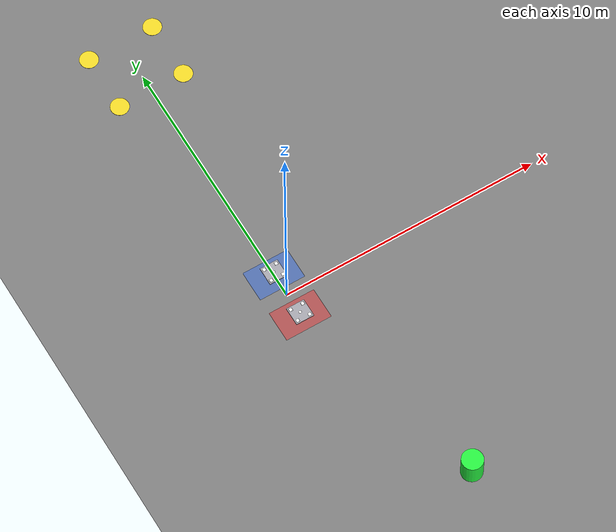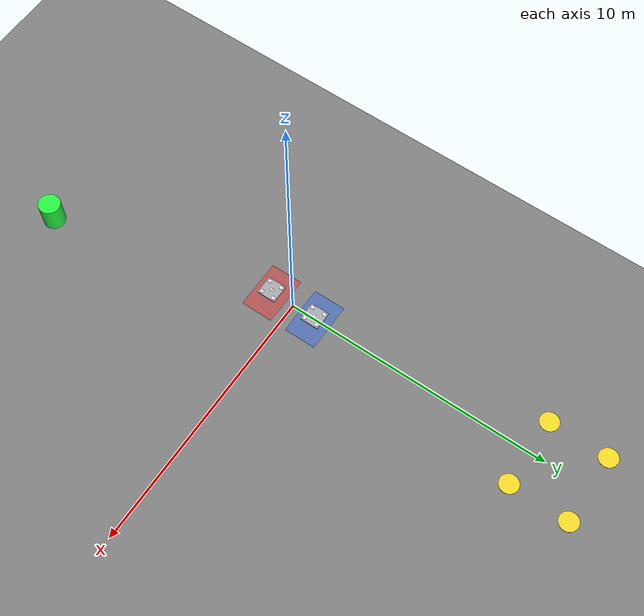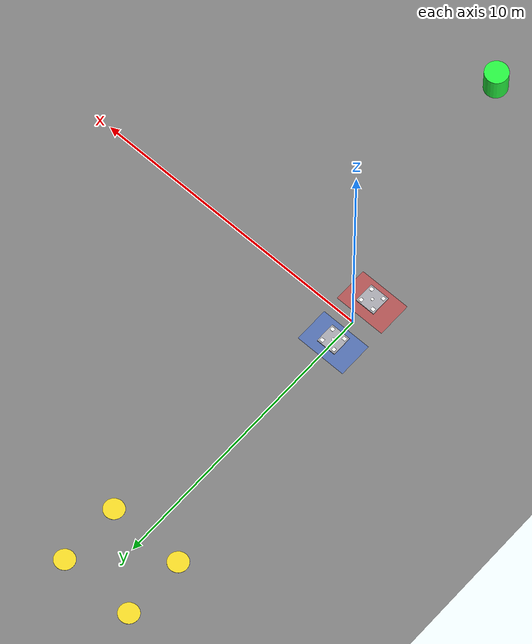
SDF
<sdf version="1.9">
 <world name="rmuc_2027_field">
  <physics type="ode">
   <max_step_size>0.004</max_step_size>
   <real_time_factor>1.0</real_time_factor>
   <real_time_update_rate>250</real_time_update_rate>
  </physics>
  <plugin name="gz::sim::systems::Physics" filename="gz-sim-physics-system"/>
  <plugin name="gz::sim::systems::UserCommands" filename="gz-sim-user-commands-system"/>
  <plugin name="gz::sim::systems::SceneBroadcaster" filename="gz-sim-scene-broadcaster-system"/>
  <plugin name="gz::sim::systems::Contact" filename="gz-sim-contact-system"/>
  <plugin name="gz::sim::systems::Imu" filename="gz-sim-imu-system"/>
  <plugin name="gz::sim::systems::AirPressure" filename="gz-sim-air-pressure-system"/>
  <plugin name="gz::sim::systems::ApplyLinkWrench" filename="gz-sim-apply-link-wrench-system"/>
  <plugin name="gz::sim::systems::NavSat" filename="gz-sim-navsat-system"/>
  <plugin name="gz::sim::systems::Sensors" filename="gz-sim-sensors-system">
   <render_engine>ogre2</render_engine>
  </plugin>
  <gravity>0 0 -9.8</gravity>
  <magnetic_field>6e-06 2.3e-05 -4.2e-05</magnetic_field>
  <atmosphere type="adiabatic"/>
  <scene>
   <grid>false</grid>
   <ambient>0.4 0.4 0.4 1</ambient>
   <background>0.7 0.7 0.7 1</background>
   <shadows>true</shadows>
  </scene>
  <light name="sunUTC" type="directional">
   <pose>0 0 500 0 -0 0</pose>
   <intensity>1</intensity>
   <direction>0.001 0.625 -0.78</direction>
   <diffuse>0.904 0.904 0.904 1</diffuse>
   <specular>0.271 0.271 0.271 1</specular>
   <attenuation><range>2000</range><linear>0</linear><constant>1</constant><quadratic>0</quadratic></attenuation>
   <spot><inner_angle>0</inner_angle><outer_angle>0</outer_angle><falloff>0</falloff></spot>
  </light>
  <spherical_coordinates>
   <surface_model>EARTH_WGS84</surface_model>
   <world_frame_orientation>ENU</world_frame_orientation>
   <latitude_deg>47.397971057728974</latitude_deg>
   <longitude_deg>8.546163739800146</longitude_deg>
   <elevation>0</elevation>
  </spherical_coordinates>
  <model name="ground_plane">
   <static>true</static>
   <link name="link">
    <collision name="collision">
     <geometry><plane><normal>0 0 1</normal><size>1 1</size></plane></geometry>
    </collision>
    <visual name="visual">
     <geometry><plane><normal>0 0 1</normal><size>100 100</size></plane></geometry>
     <material>
      <ambient>0.5 0.5 0.5 1</ambient>
      <diffuse>0.5 0.5 0.5 1</diffuse>
      <specular>0.5 0.5 0.5 1</specular>
     </material>
    </visual>
   </link>
  </model>
  <model name="hangar_blue">
   <include><uri>model://hangar</uri><name>hangar_blue</name><pose>0 0.9 0 0 0 0</pose></include>
   <static>true</static>
  </model>
  <model name="hangar_red">
   <include><uri>model://hangar</uri><name>hangar_red</name><pose>0 -0.9 0 0 0 0</pose></include>
   <static>true</static>
  </model>
  <model name="hangar_zone_blue">
   <static>true</static>
   <pose>0 0.9 0.006 0 0 0</pose>
   <link name="link">
    <visual name="visual">
     <geometry><box><size>1.8 1.2 0.004</size></box></geometry>
     <material>
      <ambient>0.1 0.3 0.9 0.45</ambient>
      <diffuse>0.15 0.4 0.95 0.45</diffuse>
      <emissive>0.05 0.15 0.5 0.45</emissive>
     </material>
    </visual>
   </link>
  </model>
  <model name="hangar_zone_red">
   <static>true</static>
   <pose>0 -0.9 0.006 0 0 0</pose>
   <link name="link">
    <visual name="visual">
     <geometry><box><size>1.8 1.2 0.004</size></box></geometry>
     <material>
      <ambient>0.9 0.1 0.1 0.45</ambient>
      <diffuse>0.95 0.15 0.15 0.45</diffuse>
      <emissive>0.5 0.05 0.05 0.45</emissive>
     </material>
    </visual>
   </link>
  </model>
  <model name="pad_1">
   <static>true</static>
   <pose>1.3 9.4 0.012 0 0 0</pose>
   <link name="link">
    <visual name="visual">
     <geometry><cylinder><radius>0.35</radius><length>0.01</length></cylinder></geometry>
     <material>
      <ambient>0.85 0.75 0.1 1</ambient>
      <diffuse>0.95 0.85 0.15 1</diffuse>
      <emissive>0.5 0.42 0.05 1</emissive>
     </material>
    </visual>
   </link>
  </model>
  <model name="pad_2">
   <static>true</static>
   <pose>-1.3 9.4 0.012 0 0 0</pose>
   <link name="link">
    <visual name="visual">
     <geometry><cylinder><radius>0.35</radius><length>0.01</length></cylinder></geometry>
     <material>
      <ambient>0.85 0.75 0.1 1</ambient>
      <diffuse>0.95 0.85 0.15 1</diffuse>
      <emissive>0.5 0.42 0.05 1</emissive>
     </material>
    </visual>
   </link>
  </model>
  <model name="pad_3">
   <static>true</static>
   <pose>1.3 11.6 0.012 0 0 0</pose>
   <link name="link">
    <visual name="visual">
     <geometry><cylinder><radius>0.35</radius><length>0.01</length></cylinder></geometry>
     <material>
      <ambient>0.85 0.75 0.1 1</ambient>
      <diffuse>0.95 0.85 0.15 1</diffuse>
      <emissive>0.5 0.42 0.05 1</emissive>
     </material>
    </visual>
   </link>
  </model>
  <model name="pad_4">
   <static>true</static>
   <pose>-1.3 11.6 0.012 0 0 0</pose>
   <link name="link">
    <visual name="visual">
     <geometry><cylinder><radius>0.35</radius><length>0.01</length></cylinder></geometry>
     <material>
      <ambient>0.85 0.75 0.1 1</ambient>
      <diffuse>0.95 0.85 0.15 1</diffuse>
      <emissive>0.5 0.42 0.05 1</emissive>
     </material>
    </visual>
   </link>
  </model>
  <model name="target_marker">
   <static>true</static>
   <pose>2.0 -9.0 0.5 0 0 0</pose>
   <link name="link">
    <collision name="collision">
     <geometry><cylinder><radius>0.4</radius><length>1.0</length></cylinder></geometry>
    </collision>
    <visual name="visual">
     <geometry><cylinder><radius>0.4</radius><length>1.0</length></cylinder></geometry>
     <material>
      <ambient>0.1 0.8 0.2 1</ambient>
      <diffuse>0.15 0.95 0.25 1</diffuse>
      <emissive>0.1 0.6 0.15 1</emissive>
     </material>
    </visual>
   </link>
  </model>
 </world>
</sdf>

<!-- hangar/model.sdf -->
<sdf version="1.9">
  <!-- RM2027 机库简化模型（静态）。
       平台顶面 z=0.24m，低于 A* 占据带下限 0.35m，不进入占据栅格（可飞越）。
       真实机库内部 300x300x200mm 收纳 4 机，此处简化为 0.70x0.70m 平台 + 4 个槽位标记，
       中心白色标记供后续 D430i 视觉伺服对准。 -->
  <model name="hangar">
    <static>true</static>

    <link name="base">
      <collision name="base_col">
        <pose>0 0 0.10 0 0 0</pose>
        <geometry><box><size>0.40 0.40 0.20</size></box></geometry>
      </collision>
      <visual name="base_vis">
        <pose>0 0 0.10 0 0 0</pose>
        <geometry><box><size>0.40 0.40 0.20</size></box></geometry>
        <material>
          <ambient>0.25 0.25 0.28 1</ambient>
          <diffuse>0.30 0.30 0.34 1</diffuse>
        </material>
      </visual>

      <collision name="platform_col">
        <pose>0 0 0.22 0 0 0</pose>
        <geometry><box><size>0.70 0.70 0.04</size></box></geometry>
      </collision>
      <visual name="platform_vis">
        <pose>0 0 0.22 0 0 0</pose>
        <geometry><box><size>0.70 0.70 0.04</size></box></geometry>
        <material>
          <ambient>0.55 0.55 0.58 1</ambient>
          <diffuse>0.65 0.65 0.68 1</diffuse>
        </material>
      </visual>

      <!-- 4 个降落槽位标记（纯视觉） -->
      <visual name="slot_1">
        <pose>0.24 0.24 0.2425 0 0 0</pose>
        <geometry><box><size>0.12 0.12 0.005</size></box></geometry>
        <material><ambient>0.9 0.9 0.9 1</ambient><diffuse>0.95 0.95 0.95 1</diffuse></material>
      </visual>
      <visual name="slot_2">
        <pose>-0.24 0.24 0.2425 0 0 0</pose>
        <geometry><box><size>0.12 0.12 0.005</size></box></geometry>
        <material><ambient>0.9 0.9 0.9 1</ambient><diffuse>0.95 0.95 0.95 1</diffuse></material>
      </visual>
      <visual name="slot_3">
        <pose>0.24 -0.24 0.2425 0 0 0</pose>
        <geometry><box><size>0.12 0.12 0.005</size></box></geometry>
        <material><ambient>0.9 0.9 0.9 1</ambient><diffuse>0.95 0.95 0.95 1</diffuse></material>
      </visual>
      <visual name="slot_4">
        <pose>-0.24 -0.24 0.2425 0 0 0</pose>
        <geometry><box><size>0.12 0.12 0.005</size></box></geometry>
        <material><ambient>0.9 0.9 0.9 1</ambient><diffuse>0.95 0.95 0.95 1</diffuse></material>
      </visual>
      <!-- 中心对位标记（纯视觉，供视觉伺服） -->
      <visual name="center_marker">
        <pose>0 0 0.2425 0 0 0</pose>
        <geometry><cylinder><radius>0.05</radius><length>0.005</length></cylinder></geometry>
        <material><ambient>1 1 1 1</ambient><diffuse>1 1 1 1</diffuse></material>
      </visual>
    </link>
  </model>
</sdf>
